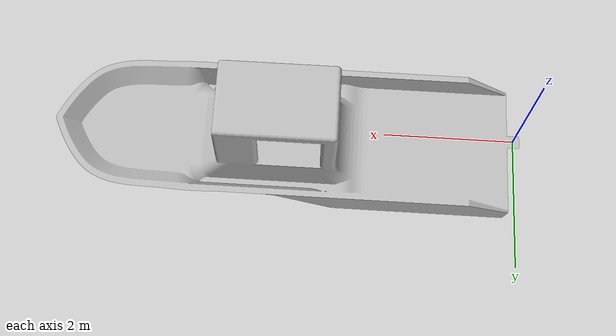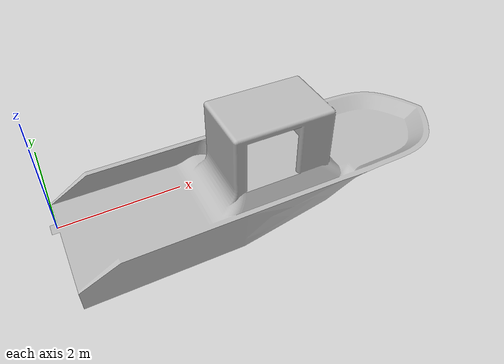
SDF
<?xml version="1.0" ?>
<sdf version="1.6">
  <model name="jv1">
    <static>true</static>
    <link name="link">
      <collision name="collision">
        <geometry>
          <mesh>
            <uri>model://jv1_description/meshes/jv1.obj</uri>
          </mesh>
        </geometry>
      </collision>
      <visual name="visual">
        <geometry>
          <mesh>
            <uri>model://jv1_description/meshes/jv1.obj</uri>
          </mesh>
        </geometry>
      </visual>
    </link>
  </model>
</sdf>
